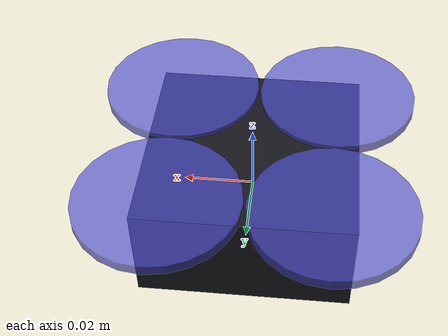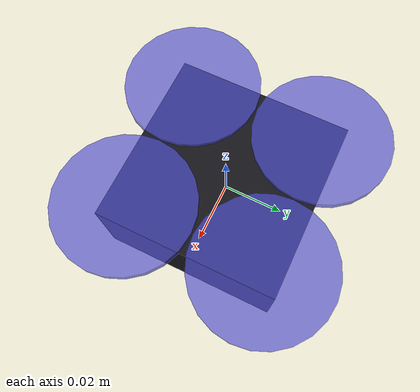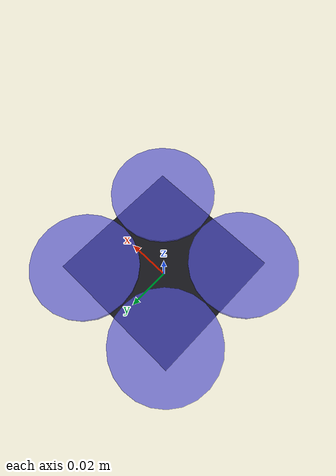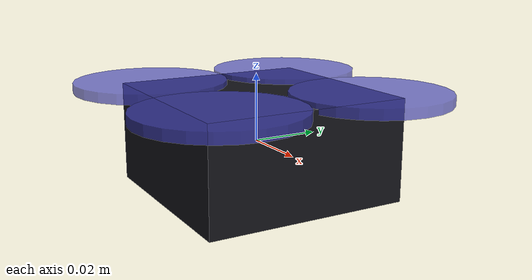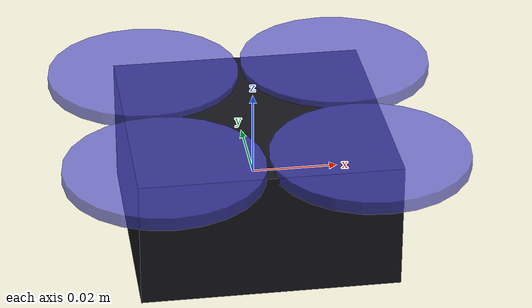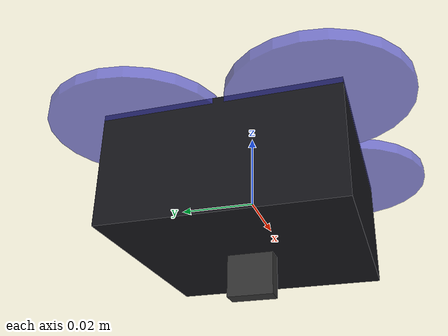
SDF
<?xml version="1.0"?>
<sdf version="1.9">
  <model name="crazyflie">

    <!-- ======================== CORPS PRINCIPAL ======================== -->
    <link name="drone_base_link">
      <gravity>false</gravity>
      <inertial>
        <mass>0.027</mass>
        <inertia>
          <ixx>1.657e-5</ixx><ixy>0</ixy><ixz>0</ixz>
          <iyy>1.657e-5</iyy><iyz>0</iyz>
          <izz>2.9e-5</izz>
        </inertia>
      </inertial>
      <visual name="body_visual">
        <geometry><box><size>0.06 0.06 0.03</size></box></geometry>
        <material>
          <ambient>0.08 0.08 0.10 1.0</ambient>
          <diffuse>0.08 0.08 0.10 1.0</diffuse>
        </material>
      </visual>
      <collision name="body_collision">
        <geometry><box><size>0.06 0.06 0.03</size></box></geometry>
      </collision>
    </link>

    <!-- ======================== ROTOR FL (Front-Left, CCW) ======================== -->
    <link name="rotor_fl">
      <pose>0.02333 0.02333 0.015 0 0 0</pose>
      <inertial>
        <mass>0.001</mass>
        <inertia>
          <ixx>1.33e-7</ixx><ixy>0</ixy><ixz>0</ixz>
          <iyy>1.33e-7</iyy><iyz>0</iyz>
          <izz>2.65e-7</izz>
        </inertia>
      </inertial>
      <visual name="rotor_fl_visual">
        <geometry><cylinder><radius>0.023</radius><length>0.003</length></cylinder></geometry>
        <material><ambient>0.3 0.3 0.8 0.7</ambient><diffuse>0.3 0.3 0.8 0.7</diffuse></material>
      </visual>
    </link>
    <joint name="rotor_fl_joint" type="revolute">
      <parent>drone_base_link</parent>
      <child>rotor_fl</child>
      <axis>
        <xyz>0 0 1</xyz>
        <limit><lower>-1e16</lower><upper>1e16</upper><effort>100</effort><velocity>1000</velocity></limit>
        <dynamics><damping>0.004</damping></dynamics>
      </axis>
    </joint>

    <!-- ======================== ROTOR FR (Front-Right, CW) ======================== -->
    <link name="rotor_fr">
      <pose>0.02333 -0.02333 0.015 0 0 0</pose>
      <inertial>
        <mass>0.001</mass>
        <inertia>
          <ixx>1.33e-7</ixx><ixy>0</ixy><ixz>0</ixz>
          <iyy>1.33e-7</iyy><iyz>0</iyz>
          <izz>2.65e-7</izz>
        </inertia>
      </inertial>
      <visual name="rotor_fr_visual">
        <geometry><cylinder><radius>0.023</radius><length>0.003</length></cylinder></geometry>
        <material><ambient>0.3 0.3 0.8 0.7</ambient><diffuse>0.3 0.3 0.8 0.7</diffuse></material>
      </visual>
    </link>
    <joint name="rotor_fr_joint" type="revolute">
      <parent>drone_base_link</parent>
      <child>rotor_fr</child>
      <axis>
        <xyz>0 0 1</xyz>
        <limit><lower>-1e16</lower><upper>1e16</upper><effort>100</effort><velocity>1000</velocity></limit>
        <dynamics><damping>0.004</damping></dynamics>
      </axis>
    </joint>

    <!-- ======================== ROTOR BL (Back-Left, CW) ======================== -->
    <link name="rotor_bl">
      <pose>-0.02333 0.02333 0.015 0 0 0</pose>
      <inertial>
        <mass>0.001</mass>
        <inertia>
          <ixx>1.33e-7</ixx><ixy>0</ixy><ixz>0</ixz>
          <iyy>1.33e-7</iyy><iyz>0</iyz>
          <izz>2.65e-7</izz>
        </inertia>
      </inertial>
      <visual name="rotor_bl_visual">
        <geometry><cylinder><radius>0.023</radius><length>0.003</length></cylinder></geometry>
        <material><ambient>0.3 0.3 0.8 0.7</ambient><diffuse>0.3 0.3 0.8 0.7</diffuse></material>
      </visual>
    </link>
    <joint name="rotor_bl_joint" type="revolute">
      <parent>drone_base_link</parent>
      <child>rotor_bl</child>
      <axis>
        <xyz>0 0 1</xyz>
        <limit><lower>-1e16</lower><upper>1e16</upper><effort>100</effort><velocity>1000</velocity></limit>
        <dynamics><damping>0.004</damping></dynamics>
      </axis>
    </joint>

    <!-- ======================== ROTOR BR (Back-Right, CCW) ======================== -->
    <link name="rotor_br">
      <pose>-0.02333 -0.02333 0.015 0 0 0</pose>
      <inertial>
        <mass>0.001</mass>
        <inertia>
          <ixx>1.33e-7</ixx><ixy>0</ixy><ixz>0</ixz>
          <iyy>1.33e-7</iyy><iyz>0</iyz>
          <izz>2.65e-7</izz>
        </inertia>
      </inertial>
      <visual name="rotor_br_visual">
        <geometry><cylinder><radius>0.023</radius><length>0.003</length></cylinder></geometry>
        <material><ambient>0.3 0.3 0.8 0.7</ambient><diffuse>0.3 0.3 0.8 0.7</diffuse></material>
      </visual>
    </link>
    <joint name="rotor_br_joint" type="revolute">
      <parent>drone_base_link</parent>
      <child>rotor_br</child>
      <axis>
        <xyz>0 0 1</xyz>
        <limit><lower>-1e16</lower><upper>1e16</upper><effort>100</effort><velocity>1000</velocity></limit>
        <dynamics><damping>0.004</damping></dynamics>
      </axis>
    </joint>

    <!-- ======================== CAMÉRA ORIENTÉE VERS LE BAS ======================== -->
    <link name="camera_link">
      <pose>0 0 -0.02 0 1.5708 3.14159</pose>
      <inertial>
        <mass>0.001</mass>
        <inertia><ixx>1e-8</ixx><ixy>0</ixy><ixz>0</ixz><iyy>1e-8</iyy><iyz>0</iyz><izz>1e-8</izz></inertia>
      </inertial>
      <visual name="camera_visual">
        <geometry><box><size>0.012 0.012 0.005</size></box></geometry>
        <material><ambient>0.2 0.2 0.2 1.0</ambient><diffuse>0.2 0.2 0.2 1.0</diffuse></material>
      </visual>
      <sensor name="drone_camera" type="camera">
        <always_on>true</always_on>
        <update_rate>30</update_rate>
        <visualize>true</visualize>
        <topic>/drone/camera/image_raw</topic>
        <camera>
          <horizontal_fov>1.047</horizontal_fov>
          <image>
            <width>640</width>
            <height>480</height>
            <format>R8G8B8</format>
          </image>
          <clip><near>0.01</near><far>20</far></clip>
          <noise><type>gaussian</type><mean>0</mean><stddev>0.005</stddev></noise>
        </camera>
      </sensor>
    </link>
    <joint name="camera_joint" type="fixed">
      <parent>drone_base_link</parent>
      <child>camera_link</child>
    </joint>

    <!-- ======================== CONTRÔLEUR DE VOL VELOCITY CONTROL ======================== -->
    <plugin filename="gz-sim-velocity-control-system"
            name="gz::sim::systems::VelocityControl">
      <link_name>drone_base_link</link_name>
      <topic>/crazyflie/cmd_vel</topic>
    </plugin>

    <!-- ======================== POSE PUBLISHER ======================== -->
    <!--
      Publie la pose réelle du drone sur /model/crazyflie/pose.
      Bridgé en ROS 2 geometry_msgs/msg/Pose, utilisé par drone_mapper_node
      pour le feedback d'altitude réel.
    -->
    <plugin filename="gz-sim-pose-publisher-system"
            name="gz::sim::systems::PosePublisher">
      <publish_link_pose>false</publish_link_pose>
      <publish_sensor_pose>false</publish_sensor_pose>
      <publish_collision_pose>false</publish_collision_pose>
      <publish_visual_pose>false</publish_visual_pose>
      <publish_nested_model_pose>false</publish_nested_model_pose>
      <publish_model_pose>true</publish_model_pose>
      <use_pose_vector_msg>false</use_pose_vector_msg>
      <update_frequency>30</update_frequency>
    </plugin>

  </model>
</sdf>
